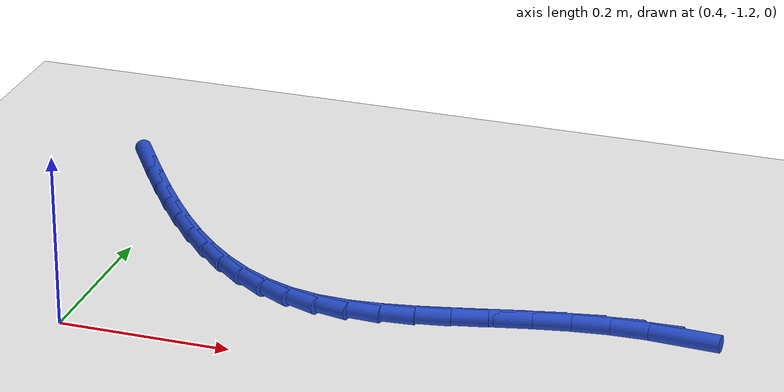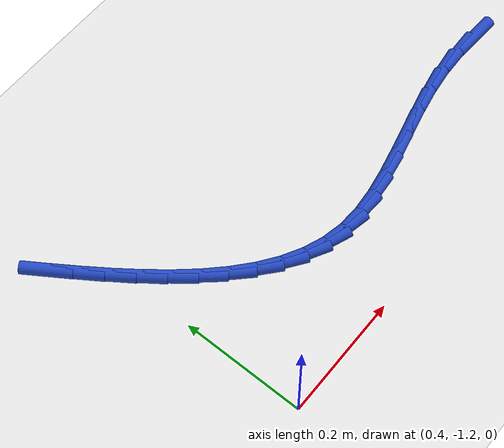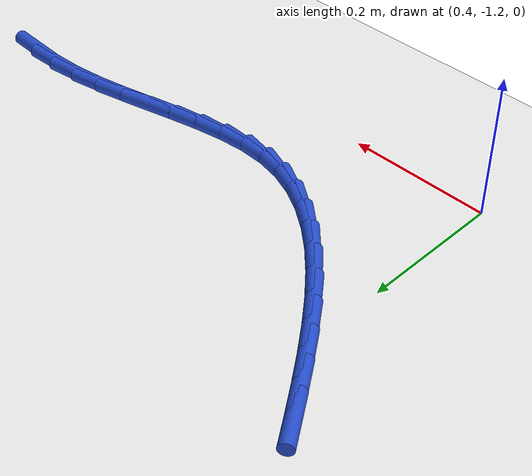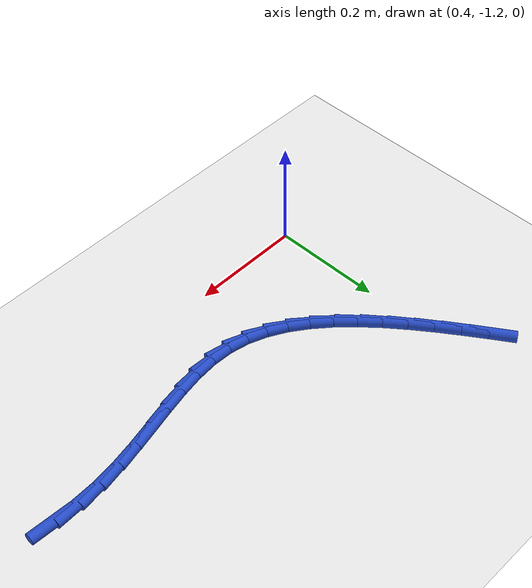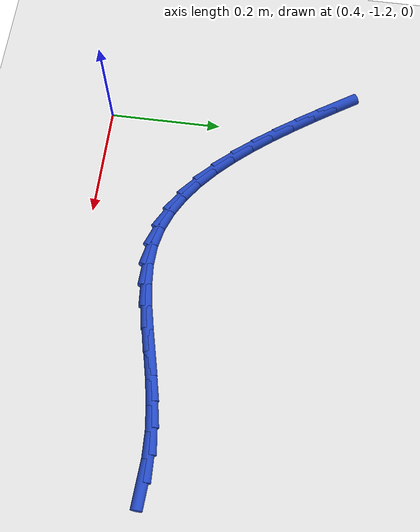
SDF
<sdf version="1.6">
 <world name="default">
  <model name="ground_plane">
   <static>1</static>
   <link name="link">
    <collision name="collision">
     <geometry><plane><normal>0 0 1</normal><size>100 100</size></plane></geometry>
     <surface><friction><ode><mu>100</mu><mu2>50</mu2></ode></friction></surface>
    </collision>
    <visual name="visual">
     <cast_shadows>0</cast_shadows>
     <geometry><plane><normal>0 0 1</normal><size>100 100</size></plane></geometry>
     <material>
      <script><uri>file://media/materials/scripts/gazebo.material</uri><name>Gazebo/WhiteGlow</name></script>
     </material>
    </visual>
   </link>
  </model>
  <model name="line">
   <link name="link_128">
    <pose>1.066925532887981 -1.0334672188959597 0.01 0 1.57 -0.05567392613471117</pose>
    <collision name="collision">
     <geometry><cylinder><radius>0.01</radius><length>0.08</length></cylinder></geometry>
    </collision>
    <visual name="visual">
     <material>
      <script><name>Gazebo/Blue</name><uri>file://media/materials/scripts/gazebo.material</uri></script>
     </material>
     <geometry><cylinder><radius>0.01</radius><length>0.08</length></cylinder></geometry>
    </visual>
   </link>
   <link name="link_129">
    <pose>1.0235005164735338 -1.0310470767432343 0.01 0 1.57 0.03686138521224843</pose>
    <collision name="collision">
     <geometry><cylinder><radius>0.01</radius><length>0.08</length></cylinder></geometry>
    </collision>
    <visual name="visual">
     <material>
      <script><name>Gazebo/Blue</name><uri>file://media/materials/scripts/gazebo.material</uri></script>
     </material>
     <geometry><cylinder><radius>0.01</radius><length>0.08</length></cylinder></geometry>
    </visual>
   </link>
   <link name="link_130">
    <pose>0.9802088159502012 -1.0326435919528114 0.01 0 1.57 0.12739829785035497</pose>
    <collision name="collision">
     <geometry><cylinder><radius>0.01</radius><length>0.08</length></cylinder></geometry>
    </collision>
    <visual name="visual">
     <material>
      <script><name>Gazebo/Blue</name><uri>file://media/materials/scripts/gazebo.material</uri></script>
     </material>
     <geometry><cylinder><radius>0.01</radius><length>0.08</length></cylinder></geometry>
    </visual>
   </link>
   <link name="link_131">
    <pose>0.93726811063663 -1.0381439545262017 0.01 0 1.57 0.19077768442684637</pose>
    <collision name="collision">
     <geometry><cylinder><radius>0.01</radius><length>0.08</length></cylinder></geometry>
    </collision>
    <visual name="visual">
     <material>
      <script><name>Gazebo/Blue</name><uri>file://media/materials/scripts/gazebo.material</uri></script>
     </material>
     <geometry><cylinder><radius>0.01</radius><length>0.08</length></cylinder></geometry>
    </visual>
   </link>
   <link name="link_132">
    <pose>0.8948244491344116 -1.0463409463690934 0.01 0 1.57 0.22703963899697777</pose>
    <collision name="collision">
     <geometry><cylinder><radius>0.01</radius><length>0.08</length></cylinder></geometry>
    </collision>
    <visual name="visual">
     <material>
      <script><name>Gazebo/Blue</name><uri>file://media/materials/scripts/gazebo.material</uri></script>
     </material>
     <geometry><cylinder><radius>0.01</radius><length>0.08</length></cylinder></geometry>
    </visual>
   </link>
   <link name="link_133">
    <pose>0.8530219769506386 -1.0559982730061286 0.01 0 1.57 0.23640359161199606</pose>
    <collision name="collision">
     <geometry><cylinder><radius>0.01</radius><length>0.08</length></cylinder></geometry>
    </collision>
    <visual name="visual">
     <material>
      <script><name>Gazebo/Blue</name><uri>file://media/materials/scripts/gazebo.material</uri></script>
     </material>
     <geometry><cylinder><radius>0.01</radius><length>0.08</length></cylinder></geometry>
    </visual>
   </link>
   <link name="link_134">
    <pose>0.8120048395924041 -1.0658796399619475 0.01 0 1.57 0.21773559468409953</pose>
    <collision name="collision">
     <geometry><cylinder><radius>0.01</radius><length>0.08</length></cylinder></geometry>
    </collision>
    <visual name="visual">
     <material>
      <script><name>Gazebo/Blue</name><uri>file://media/materials/scripts/gazebo.material</uri></script>
     </material>
     <geometry><cylinder><radius>0.01</radius><length>0.08</length></cylinder></geometry>
    </visual>
   </link>
   <link name="link_135">
    <pose>0.7719171825668018 -1.0747487527611919 0.01 0 1.57 0.16809565607084775</pose>
    <collision name="collision">
     <geometry><cylinder><radius>0.01</radius><length>0.08</length></cylinder></geometry>
    </collision>
    <visual name="visual">
     <material>
      <script><name>Gazebo/Blue</name><uri>file://media/materials/scripts/gazebo.material</uri></script>
     </material>
     <geometry><cylinder><radius>0.01</radius><length>0.08</length></cylinder></geometry>
    </visual>
   </link>
   <link name="link_136">
    <pose>0.7329031513809238 -1.0813693169285026 0.01 0 1.57 0.08277422844331651</pose>
    <collision name="collision">
     <geometry><cylinder><radius>0.01</radius><length>0.08</length></cylinder></geometry>
    </collision>
    <visual name="visual">
     <material>
      <script><name>Gazebo/Blue</name><uri>file://media/materials/scripts/gazebo.material</uri></script>
     </material>
     <geometry><cylinder><radius>0.01</radius><length>0.08</length></cylinder></geometry>
    </visual>
   </link>
   <link name="link_137">
    <pose>0.6951068915418652 -1.0845050379885206 0.01 0 1.57 -0.043486910070884455</pose>
    <collision name="collision">
     <geometry><cylinder><radius>0.01</radius><length>0.08</length></cylinder></geometry>
    </collision>
    <visual name="visual">
     <material>
      <script><name>Gazebo/Blue</name><uri>file://media/materials/scripts/gazebo.material</uri></script>
     </material>
     <geometry><cylinder><radius>0.01</radius><length>0.08</length></cylinder></geometry>
    </visual>
   </link>
   <link name="link_138">
    <pose>0.6586725485567184 -1.0829196214658872 0.01 0 1.57 -0.20541290547238814</pose>
    <collision name="collision">
     <geometry><cylinder><radius>0.01</radius><length>0.08</length></cylinder></geometry>
    </collision>
    <visual name="visual">
     <material>
      <script><name>Gazebo/Blue</name><uri>file://media/materials/scripts/gazebo.material</uri></script>
     </material>
     <geometry><cylinder><radius>0.01</radius><length>0.08</length></cylinder></geometry>
    </visual>
   </link>
   <link name="link_139">
    <pose>0.6237083475371493 -1.075634773893265 0.01 0 1.57 -0.3641584087968406</pose>
    <collision name="collision">
     <geometry><cylinder><radius>0.01</radius><length>0.08</length></cylinder></geometry>
    </collision>
    <visual name="visual">
     <material>
      <script><name>Gazebo/Blue</name><uri>file://media/materials/scripts/gazebo.material</uri></script>
     </material>
     <geometry><cylinder><radius>0.01</radius><length>0.08</length></cylinder></geometry>
    </visual>
   </link>
   <link name="link_140">
    <pose>0.5901589306468444 -1.0628471489321285 0.01 0 1.57 -0.5035423861321632</pose>
    <collision name="collision">
     <geometry><cylinder><radius>0.01</radius><length>0.08</length></cylinder></geometry>
    </collision>
    <visual name="visual">
     <material>
      <script><name>Gazebo/Blue</name><uri>file://media/materials/scripts/gazebo.material</uri></script>
     </material>
     <geometry><cylinder><radius>0.01</radius><length>0.08</length></cylinder></geometry>
    </visual>
   </link>
   <link name="link_141">
    <pose>0.5579223985753795 -1.0450876879680289 0.01 0 1.57 -0.6210861399276107</pose>
    <collision name="collision">
     <geometry><cylinder><radius>0.01</radius><length>0.08</length></cylinder></geometry>
    </collision>
    <visual name="visual">
     <material>
      <script><name>Gazebo/Blue</name><uri>file://media/materials/scripts/gazebo.material</uri></script>
     </material>
     <geometry><cylinder><radius>0.01</radius><length>0.08</length></cylinder></geometry>
    </visual>
   </link>
   <link name="link_142">
    <pose>0.5268968487076826 -1.0228873561223968 0.01 0 1.57 -0.7175663500252809</pose>
    <collision name="collision">
     <geometry><cylinder><radius>0.01</radius><length>0.08</length></cylinder></geometry>
    </collision>
    <visual name="visual">
     <material>
      <script><name>Gazebo/Blue</name><uri>file://media/materials/scripts/gazebo.material</uri></script>
     </material>
     <geometry><cylinder><radius>0.01</radius><length>0.08</length></cylinder></geometry>
    </visual>
   </link>
   <link name="link_143">
    <pose>0.49698037842868414 -0.9967771185166633 0.01 0 1.57 -0.7953276335654218</pose>
    <collision name="collision">
     <geometry><cylinder><radius>0.01</radius><length>0.08</length></cylinder></geometry>
    </collision>
    <visual name="visual">
     <material>
      <script><name>Gazebo/Blue</name><uri>file://media/materials/scripts/gazebo.material</uri></script>
     </material>
     <geometry><cylinder><radius>0.01</radius><length>0.08</length></cylinder></geometry>
    </visual>
   </link>
   <link name="link_144">
    <pose>0.4680710851233124 -0.9672879402722593 0.01 0 1.57 -0.8570856906641422</pose>
    <collision name="collision">
     <geometry><cylinder><radius>0.01</radius><length>0.08</length></cylinder></geometry>
    </collision>
    <visual name="visual">
     <material>
      <script><name>Gazebo/Blue</name><uri>file://media/materials/scripts/gazebo.material</uri></script>
     </material>
     <geometry><cylinder><radius>0.01</radius><length>0.08</length></cylinder></geometry>
    </visual>
   </link>
   <link name="link_145">
    <pose>0.4400670661764962 -0.9349507865106149 0.01 0 1.57 -0.9053201566079516</pose>
    <collision name="collision">
     <geometry><cylinder><radius>0.01</radius><length>0.08</length></cylinder></geometry>
    </collision>
    <visual name="visual">
     <material>
      <script><name>Gazebo/Blue</name><uri>file://media/materials/scripts/gazebo.material</uri></script>
     </material>
     <geometry><cylinder><radius>0.01</radius><length>0.08</length></cylinder></geometry>
    </visual>
   </link>
   <link name="link_146">
    <pose>0.41286641897316456 -0.900296622353161 0.01 0 1.57 -0.9420501625070034</pose>
    <collision name="collision">
     <geometry><cylinder><radius>0.01</radius><length>0.08</length></cylinder></geometry>
    </collision>
    <visual name="visual">
     <material>
      <script><name>Gazebo/Blue</name><uri>file://media/materials/scripts/gazebo.material</uri></script>
     </material>
     <geometry><cylinder><radius>0.01</radius><length>0.08</length></cylinder></geometry>
    </visual>
   </link>
   <link name="link_147">
    <pose>0.38636724089824587 -0.8638564129213274 0.01 0 1.57 -0.9687954610738131</pose>
    <collision name="collision">
     <geometry><cylinder><radius>0.01</radius><length>0.08</length></cylinder></geometry>
    </collision>
    <visual name="visual">
     <material>
      <script><name>Gazebo/Blue</name><uri>file://media/materials/scripts/gazebo.material</uri></script>
     </material>
     <geometry><cylinder><radius>0.01</radius><length>0.08</length></cylinder></geometry>
    </visual>
   </link>
   <link name="link_148">
    <pose>0.36046762933667004 -0.8261611233365462 0.01 0 1.57 -0.9866053283179216</pose>
    <collision name="collision">
     <geometry><cylinder><radius>0.01</radius><length>0.08</length></cylinder></geometry>
    </collision>
    <visual name="visual">
     <material>
      <script><name>Gazebo/Blue</name><uri>file://media/materials/scripts/gazebo.material</uri></script>
     </material>
     <geometry><cylinder><radius>0.01</radius><length>0.08</length></cylinder></geometry>
    </visual>
   </link>
   <link name="link_149">
    <pose>0.3350656816733656 -0.7877417187202473 0.01 0 1.57 -0.9960974268919828</pose>
    <collision name="collision">
     <geometry><cylinder><radius>0.01</radius><length>0.08</length></cylinder></geometry>
    </collision>
    <visual name="visual">
     <material>
      <script><name>Gazebo/Blue</name><uri>file://media/materials/scripts/gazebo.material</uri></script>
     </material>
     <geometry><cylinder><radius>0.01</radius><length>0.08</length></cylinder></geometry>
    </visual>
   </link>
  </model>
 </world>
</sdf>
